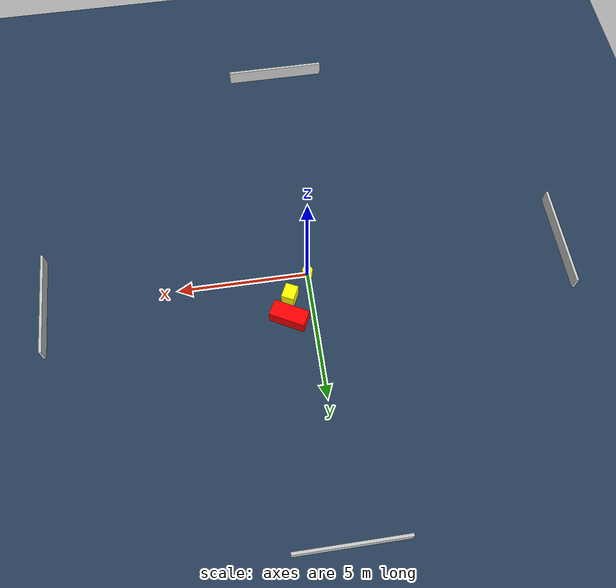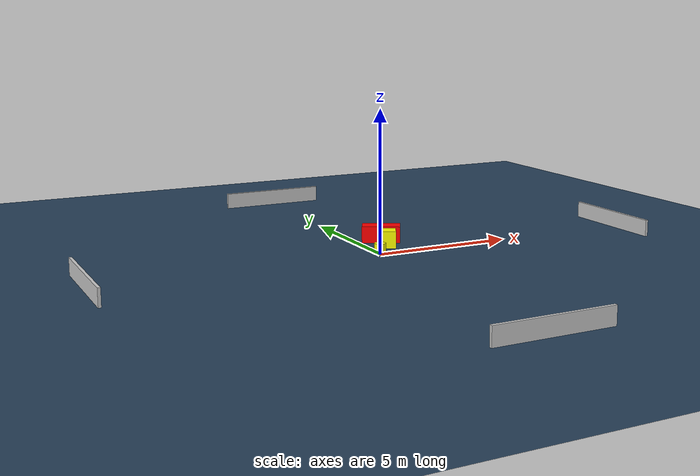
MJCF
<?xml version="1.0" ?>
<mujoco model="generated_environment">
  <option timestep="0.01" integrator="RK4" cone="elliptic"/>
  <default>
    <geom density="1"/>
  </default>
  <asset>
    <texture builtin="gradient" height="3072" name="skybox" rgb1="0.3 0.5 0.7" rgb2="0 0 0" type="skybox" width="512"/>
    <texture builtin="checker" height="300" name="groundplane" rgb1="0.2 0.3 0.4" rgb2="0.1 0.2 0.3" type="2d" width="300"/>
    <material name="groundplane" reflectance="0.2" texrepeat="5 5" texture="groundplane"/>
  </asset>
  <worldbody>
    <light dir="0 0 -1" directional="true" pos="0 0 1.5"/>
    <geom condim="3" friction="0.5 0.005 0.001" material="groundplane" name="floor" pos="0 0 0" size="0 0 0.05" type="plane"/>
    <body name="walls">
      <geom name="wall_1" condim="4" pos="-10.0 0.0 0.3" rgba="0.800000011920929 0.800000011920929 0.800000011920929 1.0" size="0.05 2.0 0.3" type="box"/>
      <geom name="wall_2" condim="4" pos="10.0 0.0 0.3" rgba="0.800000011920929 0.800000011920929 0.800000011920929 1.0" size="0.05 2.0 0.3" type="box"/>
      <geom name="wall_3" condim="4" pos="0.0 -10.0 0.3" rgba="0.800000011920929 0.800000011920929 0.800000011920929 1.0" size="2.0 0.05 0.3" type="box"/>
      <geom name="wall_4" condim="4" pos="0.0 10.0 0.3" rgba="0.800000011920929 0.800000011920929 0.800000011920929 1.0" size="2.0 0.05 0.3" type="box"/>
    </body>
    <body name="robot">
      <joint name="joint_x" type="slide" pos="0 0 0" axis="1 0 0"/>
      <joint name="joint_y" type="slide" pos="0 0 0" axis="0 1 0"/>
      <geom name="robot" type="cylinder" pos="0.0 0.0 0.2" size="0.2 0.2 0.0" mass="5.0" friction="1.0 0.005 0.0001" condim="4" rgba="1.0 1.0 0.0 1.0"/>
    </body>
    <body name="obstacle_1_movable">
      <geom name="obstacle_1_movable" condim="4" pos="0.7963545888794393 0.8840260460822846 0.3" euler="0 0 153.76714069792743" friction="0.0 0.005 0.001" rgba="1.0 1.0 0.0 1.0" size="0.24577075168449755 0.2936978303587307 0.3" type="box" mass="0.1"/>
      <joint type="free"/>
    </body>
    <body name="obstacle_2_static">
      <geom name="obstacle_2_static" condim="4" pos="0.9354969278042241 1.7413182874366413 0.3" euler="0 0 151.68537012456508" friction="0.0 0.005 0.001" rgba="1.0 0.0 0.0 1.0" size="0.6871095279769255 0.3099273908619881 0.3" type="box"/>
    </body>
  </worldbody>
  <actuator>
    <motor name="actuator_x" joint="joint_x" gear="1" ctrlrange="-1 1"/>
    <motor name="actuator_y" joint="joint_y" gear="1" ctrlrange="-1 1"/>
  </actuator>
</mujoco>
